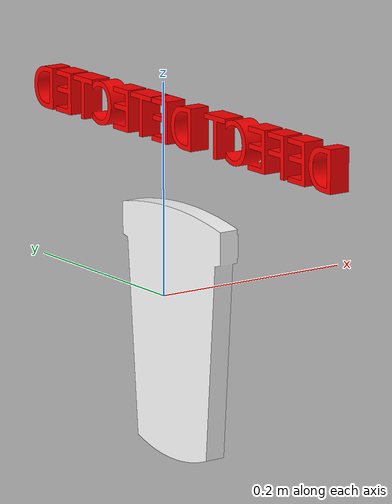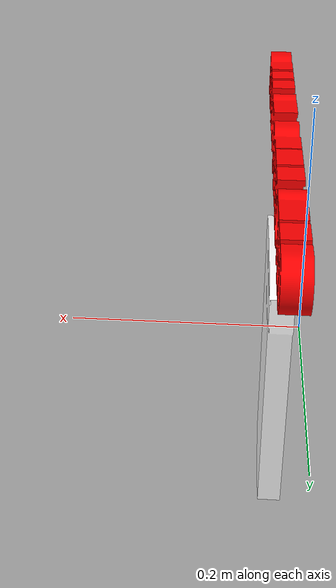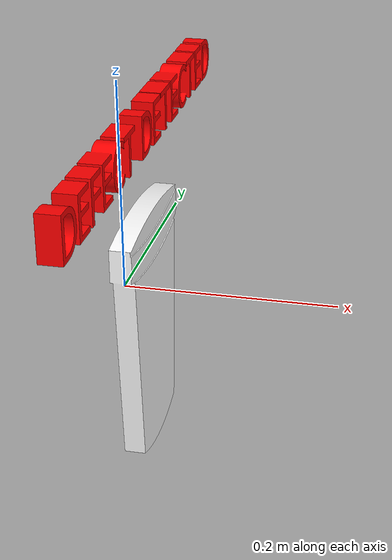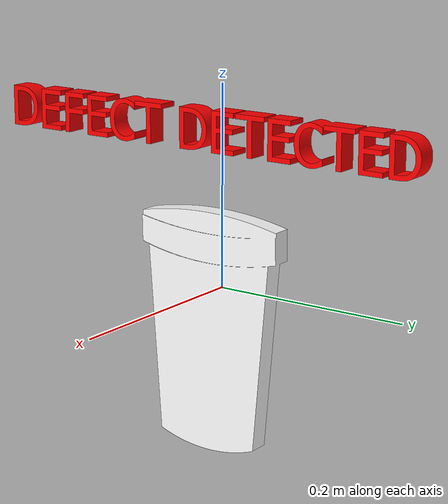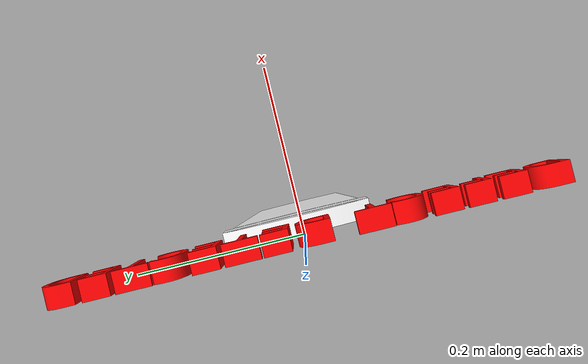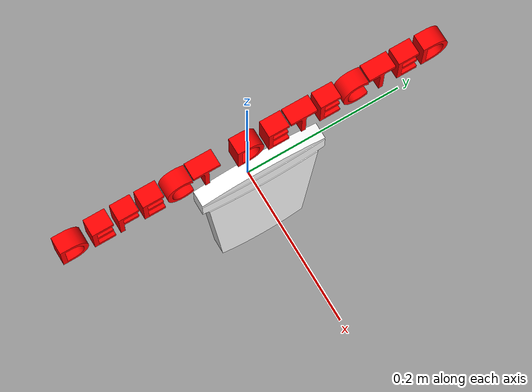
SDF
<?xml version="1.0"?>
<sdf version="1.7">
  <model name="inspection_monitor_defect">
    <static>true</static>
    <link name="monitor_link">

      <!-- DEFECT 텍스트 -->
      <visual name="defect_text">
        <pose> 0 0 0 1.5708 0 1.5708</pose>
        <geometry>
          <mesh>
            <uri>model://inspection_monitor_defect/meshes/Defect_Text_ui.stl</uri>
            <scale>1 1 1</scale>
          </mesh>
        </geometry>
        <material>
          <ambient>1 0 0 1</ambient> <!-- 빨간색 -->
          <diffuse>1 0 0 1</diffuse>
        </material>
      </visual>

      <!-- 컵 이미지 -->
      <visual name="cup_image">
        <pose>0 0 0 1.5708 0 1.5708</pose>
        <geometry>
          <mesh>
            <uri>model://inspection_monitor_defect/meshes/Cup_ui.stl</uri>
            <scale>1 1 1</scale>
          </mesh>
        </geometry>
        <material>
          <ambient>1 1 1 1</ambient>
          <diffuse>1 1 1 1</diffuse>
        </material>
      </visual>

    </link>
  </model>
</sdf>
